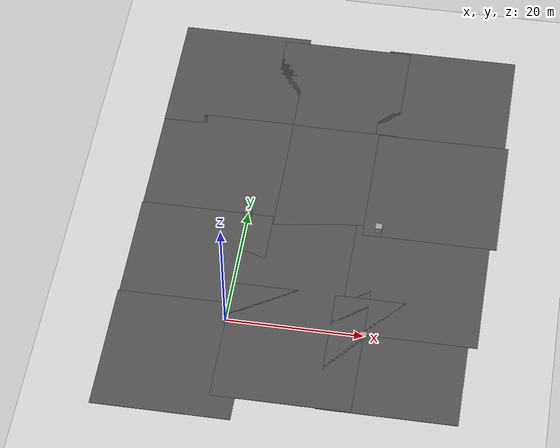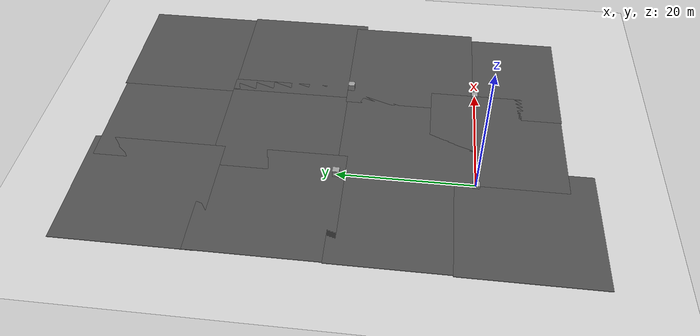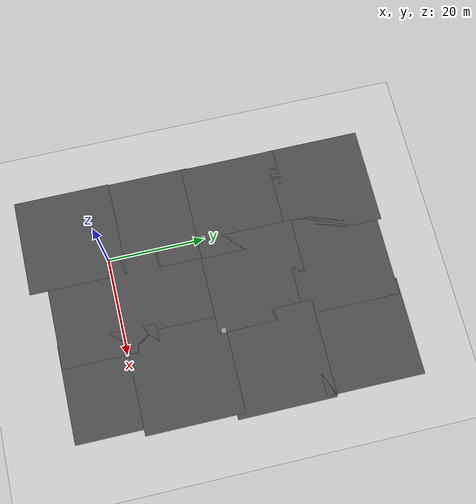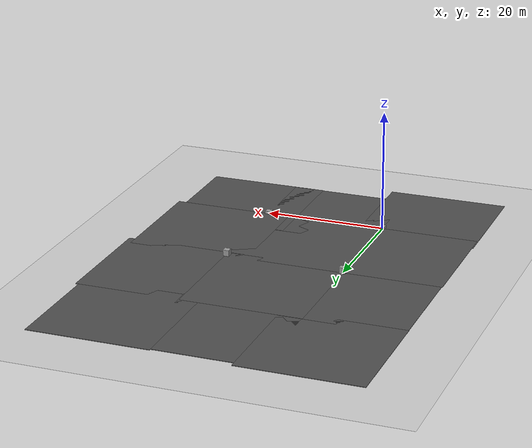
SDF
<sdf version="1.7">
 <world name="default">
  <light name="sun" type="directional">
   <pose>0 0 10 0 -0 0</pose>
   <diffuse>0.8 0.8 0.8 1</diffuse>
   <specular>0.2 0.2 0.2 1</specular>
   <attenuation>
    <range>1000</range>
    <constant>0.9</constant>
    <linear>0.01</linear>
    <quadratic>0.001</quadratic>
   </attenuation>
   <direction>-0.5 0.1 -0.9</direction>
   <spot><inner_angle>0</inner_angle><outer_angle>0</outer_angle><falloff>0</falloff></spot>
  </light>
  <model name="ground_plane">
   <static>1</static>
   <link name="link">
    <collision name="collision">
     <geometry><plane><normal>0 0 1</normal><size>100 100</size></plane></geometry>
     <surface><friction><ode><mu>100</mu><mu2>50</mu2></ode></friction></surface>
    </collision>
    <visual name="visual">
     <cast_shadows>0</cast_shadows>
     <geometry><plane><normal>0 0 1</normal><size>100 100</size></plane></geometry>
     <material>
      <script><uri>file://media/materials/scripts/gazebo.material</uri><name>Gazebo/Grey</name></script>
     </material>
    </visual>
   </link>
  </model>
  <gravity>0 0 -9.8</gravity>
  <magnetic_field>6e-06 2.3e-05 -4.2e-05</magnetic_field>
  <atmosphere type="adiabatic"/>
  <physics type="ode">
   <max_step_size>0.001</max_step_size>
   <real_time_factor>1</real_time_factor>
   <real_time_update_rate>1000</real_time_update_rate>
  </physics>
  <scene><ambient>0.4 0.4 0.4 1</ambient><background>0.7 0.7 0.7 1</background><shadows>1</shadows></scene>
  <audio><device>default</device></audio>
  <spherical_coordinates>
   <surface_model>EARTH_WGS84</surface_model>
   <latitude_deg>0</latitude_deg>
   <longitude_deg>0</longitude_deg>
   <elevation>0</elevation>
   <heading_deg>0</heading_deg>
  </spherical_coordinates>
  <model name="marker_bottom_left">
   <link name="link">
    <inertial>
     <mass>1</mass>
     <inertia>
      <ixx>0.166667</ixx>
      <ixy>0</ixy>
      <ixz>0</ixz>
      <iyy>0.166667</iyy>
      <iyz>0</iyz>
      <izz>0.166667</izz>
     </inertia>
    </inertial>
    <visual name="visual">
     <geometry><box><size>1 1 1</size></box></geometry>
     <material>
      <script><name>Gazebo/Grey</name><uri>file://media/materials/scripts/gazebo.material</uri></script>
      <shader type="pixel"/>
     </material>
    </visual>
    <collision name="collision">
     <geometry><box><size>1 1 1</size></box></geometry>
     <surface>
      <friction>
       <ode><mu>1</mu><mu2>1</mu2><fdir1>0 0 0</fdir1><slip1>0</slip1><slip2>0</slip2></ode>
       <torsional>
        <coefficient>1</coefficient>
        <patch_radius>0</patch_radius>
        <surface_radius>0</surface_radius>
        <use_patch_radius>1</use_patch_radius>
        <ode><slip>0</slip></ode>
       </torsional>
      </friction>
      <bounce><restitution_coefficient>0</restitution_coefficient><threshold>1e+06</threshold></bounce>
      <contact>
       <collide_without_contact>0</collide_without_contact>
       <collide_without_contact_bitmask>1</collide_without_contact_bitmask>
       <collide_bitmask>1</collide_bitmask>
       <ode>
        <soft_cfm>0</soft_cfm>
        <soft_erp>0.2</soft_erp>
        <kp>1e+13</kp>
        <kd>1</kd>
        <max_vel>0.01</max_vel>
        <min_depth>0</min_depth>
       </ode>
       <bullet>
        <split_impulse>1</split_impulse>
        <split_impulse_penetration_threshold>-0.01</split_impulse_penetration_threshold>
        <soft_cfm>0</soft_cfm>
        <soft_erp>0.2</soft_erp>
        <kp>1e+13</kp>
        <kd>1</kd>
       </bullet>
      </contact>
     </surface>
    </collision>
   </link>
   <static>1</static>
   <pose>0 20 0.549996 1e-05 -0 2.2e-05</pose>
  </model>
  <model name="marker_bottom_right">
   <link name="link">
    <inertial>
     <mass>1</mass>
     <inertia>
      <ixx>0.166667</ixx>
      <ixy>0</ixy>
      <ixz>0</ixz>
      <iyy>0.166667</iyy>
      <iyz>0</iyz>
      <izz>0.166667</izz>
     </inertia>
    </inertial>
    <visual name="visual">
     <geometry><box><size>1 1 1</size></box></geometry>
     <material>
      <script><name>Gazebo/Grey</name><uri>file://media/materials/scripts/gazebo.material</uri></script>
      <shader type="pixel"/>
     </material>
    </visual>
    <collision name="collision">
     <geometry><box><size>1 1 1</size></box></geometry>
     <surface>
      <friction>
       <ode><mu>1</mu><mu2>1</mu2><fdir1>0 0 0</fdir1><slip1>0</slip1><slip2>0</slip2></ode>
       <torsional>
        <coefficient>1</coefficient>
        <patch_radius>0</patch_radius>
        <surface_radius>0</surface_radius>
        <use_patch_radius>1</use_patch_radius>
        <ode><slip>0</slip></ode>
       </torsional>
      </friction>
      <bounce><restitution_coefficient>0</restitution_coefficient><threshold>1e+06</threshold></bounce>
      <contact>
       <collide_without_contact>0</collide_without_contact>
       <collide_without_contact_bitmask>1</collide_without_contact_bitmask>
       <collide_bitmask>1</collide_bitmask>
       <ode>
        <soft_cfm>0</soft_cfm>
        <soft_erp>0.2</soft_erp>
        <kp>1e+13</kp>
        <kd>1</kd>
        <max_vel>0.01</max_vel>
        <min_depth>0</min_depth>
       </ode>
       <bullet>
        <split_impulse>1</split_impulse>
        <split_impulse_penetration_threshold>-0.01</split_impulse_penetration_threshold>
        <soft_cfm>0</soft_cfm>
        <soft_erp>0.2</soft_erp>
        <kp>1e+13</kp>
        <kd>1</kd>
       </bullet>
      </contact>
     </surface>
    </collision>
   </link>
   <static>1</static>
  </model>
  <model name="marker_top_right">
   <link name="link">
    <inertial>
     <mass>1</mass>
     <inertia>
      <ixx>0.166667</ixx>
      <ixy>0</ixy>
      <ixz>0</ixz>
      <iyy>0.166667</iyy>
      <iyz>0</iyz>
      <izz>0.166667</izz>
     </inertia>
    </inertial>
    <visual name="visual">
     <geometry><box><size>1 1 1</size></box></geometry>
     <material>
      <script><name>Gazebo/Grey</name><uri>file://media/materials/scripts/gazebo.material</uri></script>
      <shader type="pixel"/>
     </material>
    </visual>
    <collision name="collision">
     <geometry><box><size>1 1 1</size></box></geometry>
     <surface>
      <friction>
       <ode><mu>1</mu><mu2>1</mu2><fdir1>0 0 0</fdir1><slip1>0</slip1><slip2>0</slip2></ode>
       <torsional>
        <coefficient>1</coefficient>
        <patch_radius>0</patch_radius>
        <surface_radius>0</surface_radius>
        <use_patch_radius>1</use_patch_radius>
        <ode><slip>0</slip></ode>
       </torsional>
      </friction>
      <bounce><restitution_coefficient>0</restitution_coefficient><threshold>1e+06</threshold></bounce>
      <contact>
       <collide_without_contact>0</collide_without_contact>
       <collide_without_contact_bitmask>1</collide_without_contact_bitmask>
       <collide_bitmask>1</collide_bitmask>
       <ode>
        <soft_cfm>0</soft_cfm>
        <soft_erp>0.2</soft_erp>
        <kp>1e+13</kp>
        <kd>1</kd>
        <max_vel>0.01</max_vel>
        <min_depth>0</min_depth>
       </ode>
       <bullet>
        <split_impulse>1</split_impulse>
        <split_impulse_penetration_threshold>-0.01</split_impulse_penetration_threshold>
        <soft_cfm>0</soft_cfm>
        <soft_erp>0.2</soft_erp>
        <kp>1e+13</kp>
        <kd>1</kd>
       </bullet>
      </contact>
     </surface>
    </collision>
   </link>
   <static>0</static>
   <pose>20 0 0 0 -0 0</pose>
  </model>
  <model name="marker_top_left">
   <link name="link">
    <inertial>
     <mass>1</mass>
     <inertia>
      <ixx>0.166667</ixx>
      <ixy>0</ixy>
      <ixz>0</ixz>
      <iyy>0.166667</iyy>
      <iyz>0</iyz>
      <izz>0.166667</izz>
     </inertia>
    </inertial>
    <visual name="visual">
     <geometry><box><size>1 1 1</size></box></geometry>
     <material>
      <script><name>Gazebo/Grey</name><uri>file://media/materials/scripts/gazebo.material</uri></script>
      <shader type="pixel"/>
     </material>
    </visual>
    <collision name="collision">
     <geometry><box><size>1 1 1</size></box></geometry>
     <surface>
      <friction>
       <ode><mu>1</mu><mu2>1</mu2><fdir1>0 0 0</fdir1><slip1>0</slip1><slip2>0</slip2></ode>
       <torsional>
        <coefficient>1</coefficient>
        <patch_radius>0</patch_radius>
        <surface_radius>0</surface_radius>
        <use_patch_radius>1</use_patch_radius>
        <ode><slip>0</slip></ode>
       </torsional>
      </friction>
      <bounce><restitution_coefficient>0</restitution_coefficient><threshold>1e+06</threshold></bounce>
      <contact>
       <collide_without_contact>0</collide_without_contact>
       <collide_without_contact_bitmask>1</collide_without_contact_bitmask>
       <collide_bitmask>1</collide_bitmask>
       <ode>
        <soft_cfm>0</soft_cfm>
        <soft_erp>0.2</soft_erp>
        <kp>1e+13</kp>
        <kd>1</kd>
        <max_vel>0.01</max_vel>
        <min_depth>0</min_depth>
       </ode>
       <bullet>
        <split_impulse>1</split_impulse>
        <split_impulse_penetration_threshold>-0.01</split_impulse_penetration_threshold>
        <soft_cfm>0</soft_cfm>
        <soft_erp>0.2</soft_erp>
        <kp>1e+13</kp>
        <kd>1</kd>
       </bullet>
      </contact>
     </surface>
    </collision>
   </link>
   <static>0</static>
   <pose>19.6961 19.6629 0.549997 8e-06 -1e-06 -0.02444</pose>
  </model>
  <model name="asphalt_plane_clone_clone_0_clone_0">
   <static>1</static>
   <link name="link">
    <collision name="collision"><geometry><box><size>20 20 0.1</size></box></geometry></collision>
    <visual name="visual">
     <cast_shadows>0</cast_shadows>
     <geometry><box><size>20 20 0.1</size></box></geometry>
     <material>
      <script>
       <uri>model://asphalt_plane/materials/scripts</uri>
       <uri>model://asphalt_plane/materials/textures</uri>
       <name>vrc/asphalt</name>
      </script>
     </material>
    </visual>
   </link>
   <pose>10.0228 10.0369 0 0 -0 0</pose>
  </model>
  <model name="asphalt_plane_clone_clone_0_clone_0_clone">
   <static>1</static>
   <link name="link">
    <collision name="collision"><geometry><box><size>20 20 0.1</size></box></geometry></collision>
    <visual name="visual">
     <cast_shadows>0</cast_shadows>
     <geometry><box><size>20 20 0.1</size></box></geometry>
     <material>
      <script>
       <uri>model://asphalt_plane/materials/scripts</uri>
       <uri>model://asphalt_plane/materials/textures</uri>
       <name>vrc/asphalt</name>
      </script>
     </material>
    </visual>
   </link>
   <pose>26.3419 10.2534 0 0 -0 0</pose>
  </model>
  <model name="asphalt_plane_clone_clone_0_clone_0_clone_clone">
   <static>1</static>
   <link name="link">
    <collision name="collision"><geometry><box><size>20 20 0.1</size></box></geometry></collision>
    <visual name="visual">
     <cast_shadows>0</cast_shadows>
     <geometry><box><size>20 20 0.1</size></box></geometry>
     <material>
      <script>
       <uri>model://asphalt_plane/materials/scripts</uri>
       <uri>model://asphalt_plane/materials/textures</uri>
       <name>vrc/asphalt</name>
      </script>
     </material>
    </visual>
   </link>
   <pose>10.0086 -3.1862 0 0 -0 0</pose>
  </model>
  <model name="asphalt_plane_clone_clone_0_clone_0_clone_clone_0">
   <static>1</static>
   <link name="link">
    <collision name="collision"><geometry><box><size>20 20 0.1</size></box></geometry></collision>
    <visual name="visual">
     <cast_shadows>0</cast_shadows>
     <geometry><box><size>20 20 0.1</size></box></geometry>
     <material>
      <script>
       <uri>model://asphalt_plane/materials/scripts</uri>
       <uri>model://asphalt_plane/materials/textures</uri>
       <name>vrc/asphalt</name>
      </script>
     </material>
    </visual>
   </link>
   <pose>25.0254 -3.29203 0 0 -0 0</pose>
  </model>
  <model name="asphalt_plane_clone_clone_0_clone_0_clone_clone_1">
   <static>1</static>
   <link name="link">
    <collision name="collision"><geometry><box><size>20 20 0.1</size></box></geometry></collision>
    <visual name="visual">
     <cast_shadows>0</cast_shadows>
     <geometry><box><size>20 20 0.1</size></box></geometry>
     <material>
      <script>
       <uri>model://asphalt_plane/materials/scripts</uri>
       <uri>model://asphalt_plane/materials/textures</uri>
       <name>vrc/asphalt</name>
      </script>
     </material>
    </visual>
   </link>
   <pose>9.93751 28.5985 0 0 -0 0</pose>
  </model>
  <model name="asphalt_plane_clone_clone_0_clone_0_clone_clone_2">
   <static>1</static>
   <link name="link">
    <collision name="collision"><geometry><box><size>20 20 0.1</size></box></geometry></collision>
    <visual name="visual">
     <cast_shadows>0</cast_shadows>
     <geometry><box><size>20 20 0.1</size></box></geometry>
     <material>
      <script>
       <uri>model://asphalt_plane/materials/scripts</uri>
       <uri>model://asphalt_plane/materials/textures</uri>
       <name>vrc/asphalt</name>
      </script>
     </material>
    </visual>
   </link>
   <pose>27.3435 28.4654 0 0 -0 0</pose>
  </model>
  <model name="asphalt_plane_clone_clone_0_clone_0_clone_clone_3">
   <static>1</static>
   <link name="link">
    <collision name="collision"><geometry><box><size>20 20 0.1</size></box></geometry></collision>
    <visual name="visual">
     <cast_shadows>0</cast_shadows>
     <geometry><box><size>20 20 0.1</size></box></geometry>
     <material>
      <script>
       <uri>model://asphalt_plane/materials/scripts</uri>
       <uri>model://asphalt_plane/materials/textures</uri>
       <name>vrc/asphalt</name>
      </script>
     </material>
    </visual>
   </link>
   <pose>-6.05119 28.7094 0 0 -0 0</pose>
  </model>
  <model name="asphalt_plane_clone_clone_0_clone_0_clone_clone_4">
   <static>1</static>
   <link name="link">
    <collision name="collision"><geometry><box><size>20 20 0.1</size></box></geometry></collision>
    <visual name="visual">
     <cast_shadows>0</cast_shadows>
     <geometry><box><size>20 20 0.1</size></box></geometry>
     <material>
      <script>
       <uri>model://asphalt_plane/materials/scripts</uri>
       <uri>model://asphalt_plane/materials/textures</uri>
       <name>vrc/asphalt</name>
      </script>
     </material>
    </visual>
   </link>
   <pose>-6.18027 10.0246 0 0 -0 0</pose>
  </model>
  <model name="asphalt_plane_clone_clone_0_clone_0_clone_clone_5">
   <static>1</static>
   <link name="link">
    <collision name="collision"><geometry><box><size>20 20 0.1</size></box></geometry></collision>
    <visual name="visual">
     <cast_shadows>0</cast_shadows>
     <geometry><box><size>20 20 0.1</size></box></geometry>
     <material>
      <script>
       <uri>model://asphalt_plane/materials/scripts</uri>
       <uri>model://asphalt_plane/materials/textures</uri>
       <name>vrc/asphalt</name>
      </script>
     </material>
    </visual>
   </link>
   <pose>-6.36926 -6.88231 0 0 -0 0</pose>
  </model>
  <model name="asphalt_plane_clone_clone_0_clone_0_clone_clone_6">
   <static>1</static>
   <link name="link">
    <collision name="collision"><geometry><box><size>20 20 0.1</size></box></geometry></collision>
    <visual name="visual">
     <cast_shadows>0</cast_shadows>
     <geometry><box><size>20 20 0.1</size></box></geometry>
     <material>
      <script>
       <uri>model://asphalt_plane/materials/scripts</uri>
       <uri>model://asphalt_plane/materials/textures</uri>
       <name>vrc/asphalt</name>
      </script>
     </material>
    </visual>
   </link>
   <pose>-6.08705 47.0345 0 0 -0 0</pose>
  </model>
  <model name="asphalt_plane_clone_clone_0_clone_0_clone_clone_7">
   <static>1</static>
   <link name="link">
    <collision name="collision"><geometry><box><size>20 20 0.1</size></box></geometry></collision>
    <visual name="visual">
     <cast_shadows>0</cast_shadows>
     <geometry><box><size>20 20 0.1</size></box></geometry>
     <material>
      <script>
       <uri>model://asphalt_plane/materials/scripts</uri>
       <uri>model://asphalt_plane/materials/textures</uri>
       <name>vrc/asphalt</name>
      </script>
     </material>
    </visual>
   </link>
   <pose>10.0798 46.1623 0 0 -0 0</pose>
  </model>
  <model name="asphalt_plane_clone_clone_0_clone_0_clone_clone_8">
   <static>1</static>
   <link name="link">
    <collision name="collision"><geometry><box><size>20 20 0.1</size></box></geometry></collision>
    <visual name="visual">
     <cast_shadows>0</cast_shadows>
     <geometry><box><size>20 20 0.1</size></box></geometry>
     <material>
      <script>
       <uri>model://asphalt_plane/materials/scripts</uri>
       <uri>model://asphalt_plane/materials/textures</uri>
       <name>vrc/asphalt</name>
      </script>
     </material>
    </visual>
   </link>
   <pose>26.8137 46.4517 0 0 -0 0</pose>
  </model>
 </world>
</sdf>
